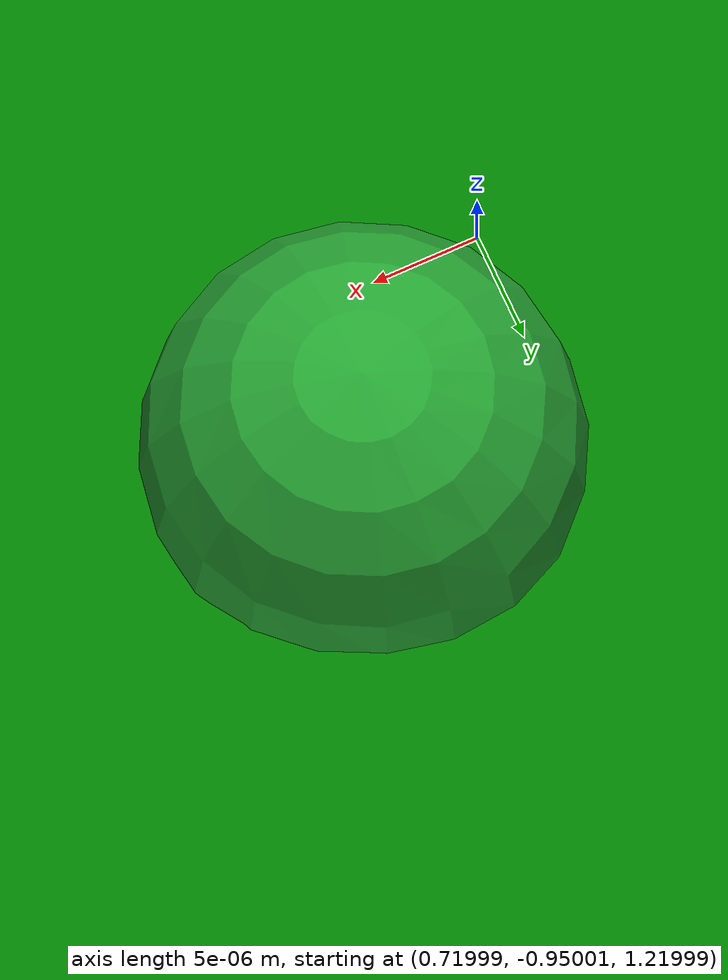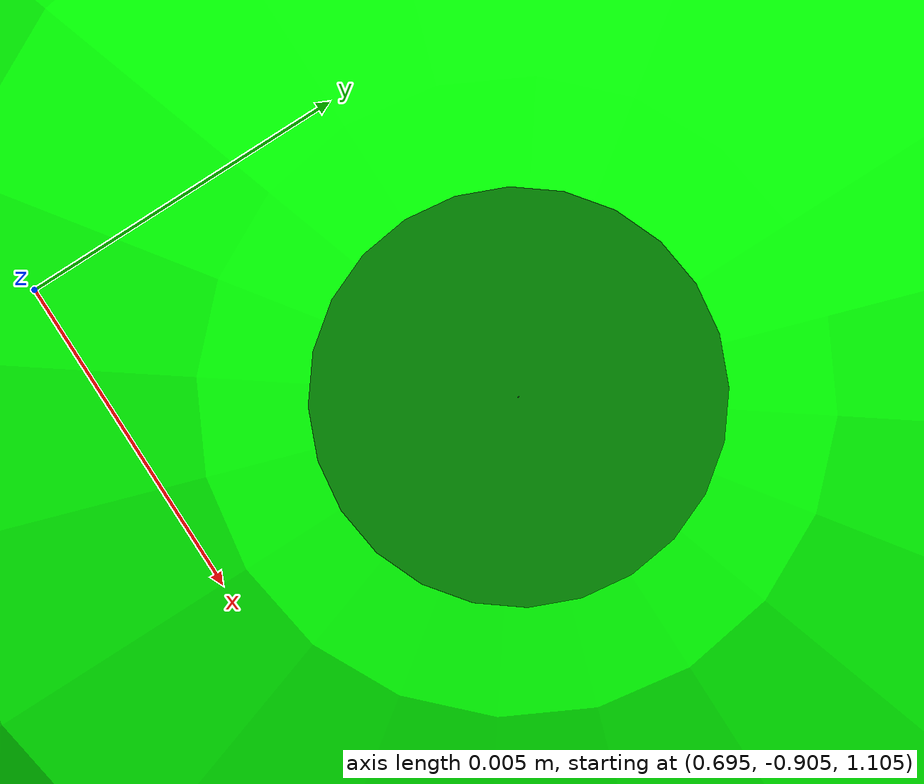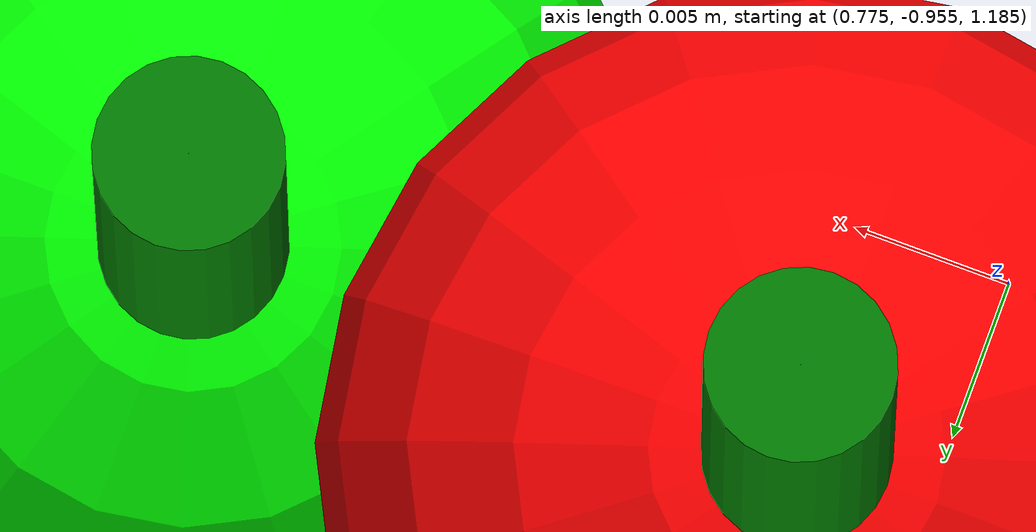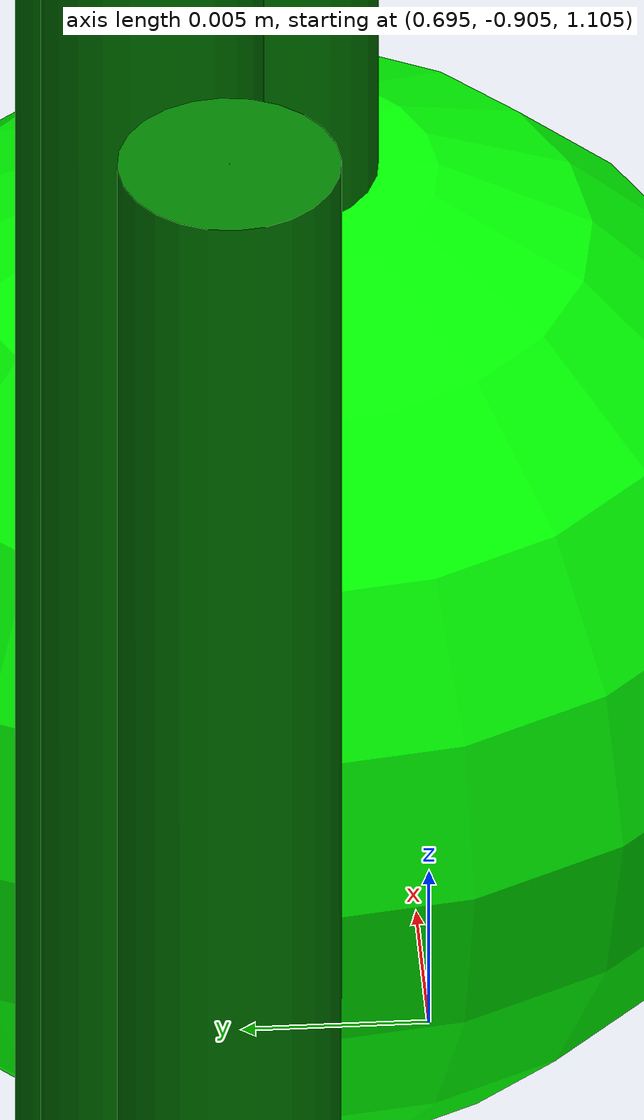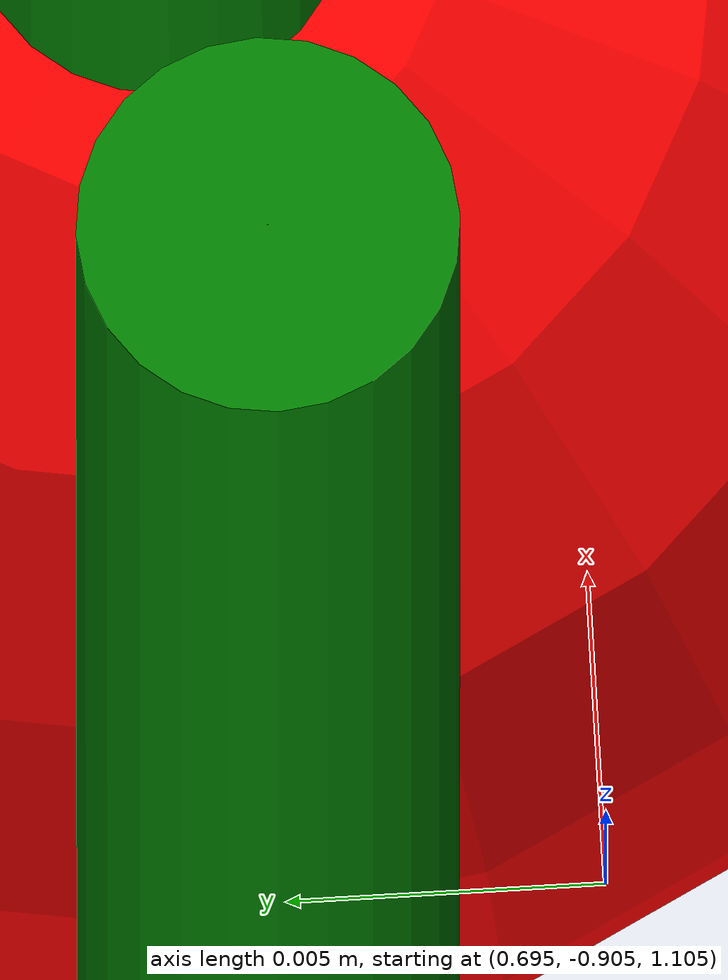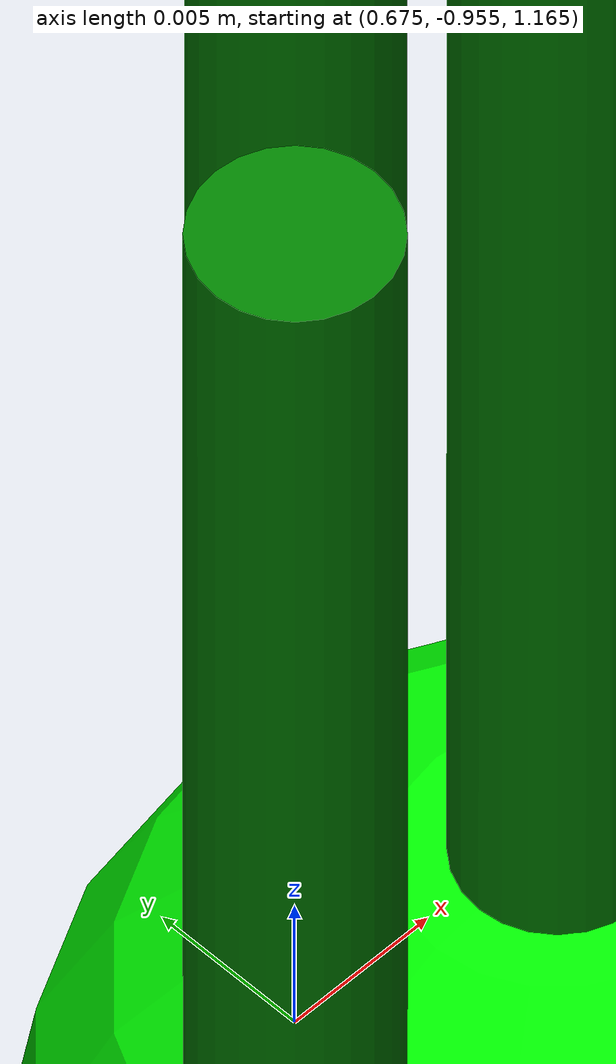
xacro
<?xml version="1.0" encoding="utf-8"?>
<robot xmlns:xacro="http://www.ros.org/wiki/xacro" name="straw_cluster2">

<xacro:arg name="tf_prefix" default=""/>

<link name="world"/>

<!-- cluster21-->
<link name="$(arg tf_prefix)/yball_stem21">
  <gravity>1</gravity>
  <inertial>
    <origin xyz="0 0 0" rpy="0 0 0"/>
    <mass value=".00001"/>
    <inertia ixx="0.00001" ixy="0.0" ixz="0.0" iyy="0.00001" iyz="0.0" izz="0.00001" />
  </inertial>
  <visual><geometry><sphere radius=".00001"/></geometry></visual>
  <collision><geometry><sphere radius=".00001"/></geometry></collision>
</link>
<gazebo reference="$(arg tf_prefix)/yball_stem21">
  <material>Gazebo/Green</material>
</gazebo>

<joint name="$(arg tf_prefix)/stem21y" type="revolute" >
  <parent link="world" />
  <child link="$(arg tf_prefix)/yball_stem21" />
  <origin xyz="0.75 -0.95 1.19" rpy="0 0 0"/>
  <axis xyz="0 1 0" />
  <dynamics damping="0.0001" friction="0.0002"/>
  <limit
      lower="-${pi}" upper="${pi}"
      effort="1" velocity="0.1" />
</joint>

<link name="$(arg tf_prefix)/xball_stem21">
  <gravity>1</gravity>
  <inertial>
    <origin xyz="0 0 0" rpy="0 0 0"/>
    <mass value=".00001"/>
    <inertia ixx="0.0000004" ixy="0.0" ixz="0.0" iyy="0.0000004" iyz="0.0" izz="0.0000004" />
  </inertial>
  <visual><geometry><sphere radius=".00001"/></geometry></visual>
  <collision><geometry><sphere radius=".00001"/></geometry></collision>
</link>
<gazebo reference="$(arg tf_prefix)/xball_stem21">
  <material>Gazebo/Green</material>
</gazebo>

<joint name="$(arg tf_prefix)/stem21x" type="revolute" >
  <parent link="$(arg tf_prefix)/yball_stem21"/>
  <child link="$(arg tf_prefix)/xball_stem21"/>
  <origin xyz="0 0 0" rpy="0 0 0"/>
  <axis xyz="1 0 0" />
  <dynamics damping="0.0001" friction="0.0002" />
  <limit
      lower="-${pi}" upper="${pi}"
      effort="1" velocity="0.1" />
</joint>

<!-- Define stem of straw21 -->
<link name="$(arg tf_prefix)/stem21">
  <gravity>1</gravity>
  <inertial>
    <origin xyz="0 0 0" rpy="0 0 0"/>
    <mass value="0.001"/>
    <inertia
      ixx="0.0000000005" ixy="0.0" ixz="0.0"
      iyy="0.0000000005" iyz="0.0"
      izz="0.0000000005"/>
  </inertial>
  <collision>
    <geometry>
	<cylinder length="0.15" radius="0.003"/>
    </geometry>
    <material name="green">
      <color rgba="0 ${128/255} 0 1"/>
    </material>
    <origin xyz="0 0 -0.075" rpy="0 0 0"/>
  </collision>
  <visual>
    <geometry>
		<cylinder length="0.15" radius="0.003"/>
    </geometry>
    <material name="green">
      <color rgba="0 ${128/255} 0 1"/>
    </material>
    <origin xyz="0 0 -0.075" rpy="0 0 0"/>
  </visual>
</link>
<gazebo reference="$(arg tf_prefix)/stem21">
  <mu1>0.01</mu1>
  <mu2>0.01</mu2>
  <selfCollide>true</selfCollide>
  <maxContacts>2</maxContacts>
  <minDepth>0</minDepth>
  <maxVel>0.01</maxVel>
  <kp  value="1" />
  <kd  value="0.1" />
  <material>Gazebo/Green</material>
</gazebo>

<joint name="$(arg tf_prefix)/xball_stem21" type="fixed">
  <parent link="$(arg tf_prefix)/xball_stem21"/>
  <child link="$(arg tf_prefix)/stem21"/>
  <origin xyz="0 0 0" rpy="0 0 0"/>
</joint>

<!-- Define straw21 -->
<link name="$(arg tf_prefix)/straw21">
  <gravity>1</gravity>
  <inertial>
    <origin xyz="0 0 0" rpy="0 0 0"/>
    <mass value="0.002"/>
    <inertia
      ixx="0.00000018" ixy="0.0" ixz="0.0"
      iyy="0.00000018" iyz="0.0"
      izz="0.00000018"/>
  </inertial>
  <collision>
    <geometry>
    <sphere radius="0.015"/>
    </geometry>
  </collision>
  <visual>
    <geometry>
	<sphere radius="0.015"/>
    </geometry>
    <material name="Red">
      <color rgba="1 0 0 1"/>
    </material>
  </visual>
</link>
<gazebo reference="$(arg tf_prefix)/straw21">
  <mu1>0.01</mu1>
  <mu2>0.01</mu2>
  <selfCollide>true</selfCollide>
  <maxContacts>2</maxContacts>
  <minDepth>0</minDepth>
  <maxVel>0.01</maxVel>
  <kp  value="1" />
  <kd  value="0.1" />
  <material>Gazebo/Red</material>
</gazebo>

<joint name="$(arg tf_prefix)/straw21_stem21" type="revolute">
  <parent link="$(arg tf_prefix)/stem21"/>
  <child link="$(arg tf_prefix)/straw21"/>
  <origin xyz="0 0 -0.15" rpy="0 0 0"/>
  <axis xyz="0 1 0" />
  <dynamics damping="0.0000001" friction="0.0000002"/>
  <limit
      lower="-${pi}" upper="${pi}"
      effort="0.01" velocity="0.1" />
</joint>

<!-- cluster22-->
<link name="$(arg tf_prefix)/yball_stem22">
  <gravity>1</gravity>
  <inertial>
    <origin xyz="0 0 0" rpy="0 0 0"/>
    <mass value=".00001"/>
    <inertia ixx="0.0000004" ixy="0.0" ixz="0.0" iyy="0.0000004" iyz="0.0" izz="0.0000004" />
  </inertial>
  <visual><geometry><sphere radius=".00001"/></geometry></visual>
  <collision><geometry><sphere radius=".00001"/></geometry></collision>
</link>
<gazebo reference="$(arg tf_prefix)/yball_stem22">
  <material>Gazebo/Green</material>
</gazebo>

<joint name="$(arg tf_prefix)/stem22y" type="revolute" >
  <parent link="world" />
  <child link="$(arg tf_prefix)/yball_stem22" />
  <origin xyz="0.72 -0.95 1.22" rpy="0 0 0"/>
  <axis xyz="0 1 0" />
  <dynamics damping="0.0001" friction="0.0002"/>
  <limit
      lower="-${pi}" upper="${pi}"
      effort="1" velocity="0.1" />
</joint>

<link name="$(arg tf_prefix)/xball_stem22">
  <gravity>1</gravity>
  <inertial>
    <origin xyz="0 0 0" rpy="0 0 0"/>
    <mass value=".00001"/>
    <inertia ixx="0.0000004" ixy="0.0" ixz="0.0" iyy="0.0000004" iyz="0.0" izz="0.0000004" />
  </inertial>
  <visual><geometry><sphere radius=".00001"/></geometry></visual>
  <collision><geometry><sphere radius=".00001"/></geometry></collision>
</link>
<gazebo reference="$(arg tf_prefix)/xball_stem22">
  <material>Gazebo/Green</material>
</gazebo>

<joint name="$(arg tf_prefix)/stem22x" type="revolute" >
  <parent link="$(arg tf_prefix)/yball_stem22"/>
  <child link="$(arg tf_prefix)/xball_stem22"/>
  <origin xyz="0 0 0" rpy="0 0 0"/>
  <axis xyz="1 0 0" />
  <dynamics damping="0.0001" friction="0.0002" />
  <limit
      lower="-${pi}" upper="${pi}"
      effort="1" velocity="0.1" />
</joint>

<!-- Define stem of straw5 -->
<link name="$(arg tf_prefix)/stem22">
  <gravity>1</gravity>
  <inertial>
    <origin xyz="0 0 0" rpy="0 0 0"/>
    <mass value="0.001"/>
    <inertia
      ixx="0.0000000005" ixy="0.0" ixz="0.0"
      iyy="0.0000000005" iyz="0.0"
      izz="0.0000000005"/>
  </inertial>
  <collision>
    <geometry>
	<cylinder length="0.15" radius="0.003"/>
    </geometry>
    <material name="green">
      <color rgba="0 ${128/255} 0 1"/>
    </material>
    <origin xyz="0 0 -0.075" rpy="0 0 0"/>
  </collision>
  <visual>
    <geometry>
		<cylinder length="0.15" radius="0.003"/>
    </geometry>
    <material name="green">
      <color rgba="0 ${128/255} 0 1"/>
    </material>
    <origin xyz="0 0 -0.075" rpy="0 0 0"/>
  </visual>
</link>
<gazebo reference="$(arg tf_prefix)/stem22">
  <mu1>0.01</mu1>
  <mu2>0.01</mu2>
  <selfCollide>true</selfCollide>
  <maxContacts>2</maxContacts>
  <minDepth>0</minDepth>
  <maxVel>0.01</maxVel>
  <kp  value="1" />
  <kd  value="0.1" />
  <material>Gazebo/Green</material>
</gazebo>

<joint name="$(arg tf_prefix)/xball_stem22" type="fixed">
  <parent link="$(arg tf_prefix)/xball_stem22"/>
  <child link="$(arg tf_prefix)/stem22"/>
  <origin xyz="0 0 0" rpy="0 0 0"/>
</joint>

<!-- Define straw5 -->
<link name="$(arg tf_prefix)/straw22">
  <gravity>1</gravity>
  <inertial>
    <origin xyz="0 0 0" rpy="0 0 0"/>
    <mass value="0.002"/>
    <inertia
      ixx="0.00000018" ixy="0.0" ixz="0.0"
      iyy="0.00000018" iyz="0.0"
      izz="0.00000018"/>
  </inertial>
  <collision>
    <geometry>
    <sphere radius="0.015"/>
    </geometry>
  </collision>
  <visual>
    <geometry>
	<sphere radius="0.015"/>
    </geometry>
    <material name="Green">
      <color rgba="0 1 0 1"/>
    </material>
  </visual>
</link>
<gazebo reference="$(arg tf_prefix)/straw22">
  <mu1>0.01</mu1>
  <mu2>0.01</mu2>
  <selfCollide>true</selfCollide>
  <maxContacts>2</maxContacts>
  <minDepth>0</minDepth>
  <maxVel>0.01</maxVel>
  <kp  value="1" />
  <kd  value="0.1" />
  <material>Gazebo/Green</material>
</gazebo>

<joint name="$(arg tf_prefix)/straw22_stem22" type="fixed">
  <parent link="$(arg tf_prefix)/stem22"/>
  <child link="$(arg tf_prefix)/straw22"/>
  <origin xyz="0 0 -0.15" rpy="0 0 0"/>
</joint>

<!-- cluster23-->
<link name="$(arg tf_prefix)/yball_stem23">
  <gravity>1</gravity>
  <inertial>
    <origin xyz="0 0 0" rpy="0 0 0"/>
    <mass value=".00001"/>
    <inertia ixx="0.0000004" ixy="0.0" ixz="0.0" iyy="0.0000004" iyz="0.0" izz="0.0000004" />
  </inertial>
  <visual><geometry><sphere radius=".00001"/></geometry></visual>
  <collision><geometry><sphere radius=".00001"/></geometry></collision>
</link>
<gazebo reference="$(arg tf_prefix)/yball_stem23">
  <material>Gazebo/Green</material>
</gazebo>

<joint name="$(arg tf_prefix)/stem23y" type="revolute" >
  <parent link="world" />
  <child link="$(arg tf_prefix)/yball_stem23" />
  <origin xyz="0.78 -0.95 1.21" rpy="0 0 0"/>
  <axis xyz="0 1 0" />
  <dynamics damping="0.0001" friction="0.0002"/>
  <limit
      lower="-${pi}" upper="${pi}"
      effort="1" velocity="0.1" />
</joint>

<link name="$(arg tf_prefix)/xball_stem23">
  <gravity>1</gravity>
  <inertial>
    <origin xyz="0 0 0" rpy="0 0 0"/>
    <mass value=".00001"/>
    <inertia ixx="0.0000004" ixy="0.0" ixz="0.0" iyy="0.0000004" iyz="0.0" izz="0.0000004" />
  </inertial>
  <visual><geometry><sphere radius=".00001"/></geometry></visual>
  <collision><geometry><sphere radius=".00001"/></geometry></collision>
</link>
<gazebo reference="$(arg tf_prefix)/xball_stem6">
  <material>Gazebo/Green</material>
</gazebo>

<joint name="$(arg tf_prefix)/stem23x" type="revolute" >
  <parent link="$(arg tf_prefix)/yball_stem23"/>
  <child link="$(arg tf_prefix)/xball_stem23"/>
  <origin xyz="0 0 0" rpy="0 0 0"/>
  <axis xyz="1 0 0" />
  <dynamics damping="0.0001" friction="0.0002" />
  <limit
      lower="-${pi}" upper="${pi}"
      effort="1" velocity="0.1" />
</joint>

<!-- Define stem of straw3 -->
<link name="$(arg tf_prefix)/stem23">
  <gravity>1</gravity>
  <inertial>
    <origin xyz="0 0 0" rpy="0 0 0"/>
    <mass value="0.0001"/>
    <inertia
      ixx="0.0000000005" ixy="0.0" ixz="0.0"
      iyy="0.0000000005" iyz="0.0"
      izz="0.0000000005"/>
  </inertial>
  <collision>
    <geometry>
	<cylinder length="0.15" radius="0.003"/>
    </geometry>
    <material name="green">
      <color rgba="0 ${128/255} 0 1"/>
    </material>
    <origin xyz="0 0 -0.075" rpy="0 0 0"/>
  </collision>
  <visual>
    <geometry>
	<cylinder length="0.15" radius="0.003"/>
    </geometry>
    <material name="green">
      <color rgba="0 ${128/255} 0 1"/>
    </material>
    <origin xyz="0 0 -0.075" rpy="0 0 0"/>
  </visual>
</link>
<gazebo reference="$(arg tf_prefix)/stem23">
  <mu1>0.01</mu1>
  <mu2>0.01</mu2>
  <selfCollide>true</selfCollide>
  <maxContacts>2</maxContacts>
  <minDepth>0</minDepth>
  <maxVel>0.01</maxVel>
  <kp  value="1" />
  <kd  value="0.1" />
  <material>Gazebo/Green</material>
</gazebo>

<joint name="$(arg tf_prefix)/xball_stem23" type="fixed">
  <parent link="$(arg tf_prefix)/xball_stem23"/>
  <child link="$(arg tf_prefix)/stem23"/>
  <origin xyz="0 0 0" rpy="0 0 0"/>
</joint>

<!-- Define straw2 -->
<link name="$(arg tf_prefix)/straw23">
  <gravity>1</gravity>
  <inertial>
    <origin xyz="0 0 0" rpy="0 0 0"/>
    <mass value="0.002"/>
    <inertia
      ixx="0.00000018" ixy="0.0" ixz="0.0"
      iyy="0.00000018" iyz="0.0"
      izz="0.00000018"/>
  </inertial>
  <collision>
    <geometry>
    <sphere radius="0.015"/>
    </geometry>
  </collision>
  <visual>
    <geometry>
	<sphere radius="0.015"/>
    </geometry>
    <material name="Red">
      <color rgba="1 0 0 1"/>
    </material>
  </visual>
</link>
<gazebo reference="$(arg tf_prefix)/straw23">
  <mu1>0.01</mu1>
  <mu2>0.01</mu2>
  <selfCollide>true</selfCollide>
  <maxContacts>2</maxContacts>
  <minDepth>0</minDepth>
  <maxVel>0.01</maxVel>
  <kp  value="1" />
  <kd  value="0.1" />
  <material>Gazebo/Red</material>
</gazebo>

<joint name="$(arg tf_prefix)/straw23_stem23" type="revolute">
  <parent link="$(arg tf_prefix)/stem23"/>
  <child link="$(arg tf_prefix)/straw23"/>
  <origin xyz="0 0 -0.15" rpy="0 0 0"/>
  <axis xyz="0 1 0" />
  <dynamics damping="0.0000001" friction="0.0000002"/>
  <limit
      lower="-${pi}" upper="${pi}"
      effort="0.01" velocity="0.1" />
</joint>

<!-- cluster24-->
<link name="$(arg tf_prefix)/yball_stem24">
  <gravity>1</gravity>
  <inertial>
    <origin xyz="0 0 0" rpy="0 0 0"/>
    <mass value=".00001"/>
    <inertia ixx="0.0000004" ixy="0.0" ixz="0.0" iyy="0.0000004" iyz="0.0" izz="0.0000004" />
  </inertial>
  <visual><geometry><sphere radius=".00001"/></geometry></visual>
  <collision><geometry><sphere radius=".00001"/></geometry></collision>
</link>
<gazebo reference="$(arg tf_prefix)/yball_stem24">
  <material>Gazebo/Green</material>
</gazebo>

<joint name="$(arg tf_prefix)/stem24y" type="revolute" >
  <parent link="world" />
  <child link="$(arg tf_prefix)/yball_stem24" />
  <origin xyz="0.8 -0.95 1.19" rpy="0 0 0"/>
  <axis xyz="0 1 0" />
  <dynamics damping="0.0001" friction="0.0002"/>
  <limit
      lower="-${pi}" upper="${pi}"
      effort="1" velocity="0.1" />
</joint>

<link name="$(arg tf_prefix)/xball_stem24">
  <gravity>1</gravity>
  <inertial>
    <origin xyz="0 0 0" rpy="0 0 0"/>
    <mass value=".00001"/>
    <inertia ixx="0.0000004" ixy="0.0" ixz="0.0" iyy="0.0000004" iyz="0.0" izz="0.0000004" />
  </inertial>
  <visual><geometry><sphere radius=".00001"/></geometry></visual>
  <collision><geometry><sphere radius=".00001"/></geometry></collision>
</link>
<gazebo reference="$(arg tf_prefix)/xball_stem24">
  <material>Gazebo/Green</material>
</gazebo>

<joint name="$(arg tf_prefix)/stem24x" type="revolute" >
  <parent link="$(arg tf_prefix)/yball_stem24"/>
  <child link="$(arg tf_prefix)/xball_stem24"/>
  <origin xyz="0 0 0" rpy="0 0 0"/>
  <axis xyz="1 0 0" />
  <dynamics damping="0.0001" friction="0.0002" />
  <limit
      lower="-${pi}" upper="${pi}"
      effort="1" velocity="0.1" />
</joint>

<!-- Define stem of straw3 -->
<link name="$(arg tf_prefix)/stem24">
  <gravity>1</gravity>
  <inertial>
    <origin xyz="0 0 0" rpy="0 0 0"/>
    <mass value="0.0001"/>
    <inertia
      ixx="0.0000000005" ixy="0.0" ixz="0.0"
      iyy="0.0000000005" iyz="0.0"
      izz="0.0000000005"/>
  </inertial>
  <collision>
    <geometry>
	<cylinder length="0.15" radius="0.003"/>
    </geometry>
    <material name="green">
      <color rgba="0 ${128/255} 0 1"/>
    </material>
    <origin xyz="0 0 -0.075" rpy="0 0 0"/>
  </collision>
  <visual>
    <geometry>
	<cylinder length="0.15" radius="0.003"/>
    </geometry>
    <material name="green">
      <color rgba="0 ${128/255} 0 1"/>
    </material>
    <origin xyz="0 0 -0.075" rpy="0 0 0"/>
  </visual>
</link>
<gazebo reference="$(arg tf_prefix)/stem24">
  <mu1>0.01</mu1>
  <mu2>0.01</mu2>
  <selfCollide>true</selfCollide>
  <maxContacts>2</maxContacts>
  <minDepth>0</minDepth>
  <maxVel>0.01</maxVel>
  <kp  value="1" />
  <kd  value="0.1" />
  <material>Gazebo/Green</material>
</gazebo>

<joint name="$(arg tf_prefix)/xball_stem24" type="fixed">
  <parent link="$(arg tf_prefix)/xball_stem24"/>
  <child link="$(arg tf_prefix)/stem24"/>
  <origin xyz="0 0 0" rpy="0 0 0"/>
</joint>

<!-- Define straw2 -->
<link name="$(arg tf_prefix)/straw24">
  <gravity>1</gravity>
  <inertial>
    <origin xyz="0 0 0" rpy="0 0 0"/>
    <mass value="0.002"/>
    <inertia
      ixx="0.00000018" ixy="0.0" ixz="0.0"
      iyy="0.00000018" iyz="0.0"
      izz="0.00000018"/>
  </inertial>
  <collision>
    <geometry>
    <sphere radius="0.015"/>
    </geometry>
  </collision>
  <visual>
    <geometry>
	<sphere radius="0.015"/>
    </geometry>
    <material name="Green">
      <color rgba="0 1 0 1"/>
    </material>
  </visual>
</link>
<gazebo reference="$(arg tf_prefix)/straw24">
  <mu1>0.01</mu1>
  <mu2>0.01</mu2>
  <selfCollide>true</selfCollide>
  <maxContacts>2</maxContacts>
  <minDepth>0</minDepth>
  <maxVel>0.01</maxVel>
  <kp  value="1" />
  <kd  value="0.1" />
  <material>Gazebo/Green</material>
</gazebo>

<joint name="$(arg tf_prefix)/straw24_stem24" type="revolute">
  <parent link="$(arg tf_prefix)/stem24"/>
  <child link="$(arg tf_prefix)/straw24"/>
  <origin xyz="0 0 -0.15" rpy="0 0 0"/>
  <axis xyz="0 1 0" />
  <dynamics damping="0.0000001" friction="0.0000002"/>
  <limit
      lower="-${pi}" upper="${pi}"
      effort="0.01" velocity="0.1" />
</joint>

<!-- cluster25-->
<link name="$(arg tf_prefix)/yball_stem25">
  <gravity>1</gravity>
  <inertial>
    <origin xyz="0 0 0" rpy="0 0 0"/>
    <mass value=".00001"/>
    <inertia ixx="0.0000004" ixy="0.0" ixz="0.0" iyy="0.0000004" iyz="0.0" izz="0.0000004" />
  </inertial>
  <visual><geometry><sphere radius=".00001"/></geometry></visual>
  <collision><geometry><sphere radius=".00001"/></geometry></collision>
</link>
<gazebo reference="$(arg tf_prefix)/yball_stem25">
  <material>Gazebo/Green</material>
</gazebo>

<joint name="$(arg tf_prefix)/stem25y" type="revolute" >
  <parent link="world" />
  <child link="$(arg tf_prefix)/yball_stem25" />
  <origin xyz="0.68 -0.95 1.19" rpy="0 0 0"/>
  <axis xyz="0 1 0" />
  <dynamics damping="0.0001" friction="0.0002"/>
  <limit
      lower="-${pi}" upper="${pi}"
      effort="1" velocity="0.1" />
</joint>

<link name="$(arg tf_prefix)/xball_stem25">
  <gravity>1</gravity>
  <inertial>
    <origin xyz="0 0 0" rpy="0 0 0"/>
    <mass value=".00001"/>
    <inertia ixx="0.0000004" ixy="0.0" ixz="0.0" iyy="0.0000004" iyz="0.0" izz="0.0000004" />
  </inertial>
  <visual><geometry><sphere radius=".00001"/></geometry></visual>
  <collision><geometry><sphere radius=".00001"/></geometry></collision>
</link>
<gazebo reference="$(arg tf_prefix)/xball_stem25">
  <material>Gazebo/Green</material>
</gazebo>

<joint name="$(arg tf_prefix)/stem6x" type="revolute" >
  <parent link="$(arg tf_prefix)/yball_stem25"/>
  <child link="$(arg tf_prefix)/xball_stem25"/>
  <origin xyz="0 0 0" rpy="0 0 0"/>
  <axis xyz="1 0 0" />
  <dynamics damping="0.0001" friction="0.0002" />
  <limit
      lower="-${pi}" upper="${pi}"
      effort="1" velocity="0.1" />
</joint>

<!-- Define stem of straw3 -->
<link name="$(arg tf_prefix)/stem25">
  <gravity>1</gravity>
  <inertial>
    <origin xyz="0 0 0" rpy="0 0 0"/>
    <mass value="0.0001"/>
    <inertia
      ixx="0.0000000005" ixy="0.0" ixz="0.0"
      iyy="0.0000000005" iyz="0.0"
      izz="0.0000000005"/>
  </inertial>
  <collision>
    <geometry>
	<cylinder length="0.15" radius="0.003"/>
    </geometry>
    <material name="green">
      <color rgba="0 ${128/255} 0 1"/>
    </material>
    <origin xyz="0 0 -0.075" rpy="0 0 0"/>
  </collision>
  <visual>
    <geometry>
	<cylinder length="0.15" radius="0.003"/>
    </geometry>
    <material name="green">
      <color rgba="0 ${128/255} 0 1"/>
    </material>
    <origin xyz="0 0 -0.075" rpy="0 0 0"/>
  </visual>
</link>
<gazebo reference="$(arg tf_prefix)/stem25">
  <mu1>0.01</mu1>
  <mu2>0.01</mu2>
  <selfCollide>true</selfCollide>
  <maxContacts>2</maxContacts>
  <minDepth>0</minDepth>
  <maxVel>0.01</maxVel>
  <kp  value="1" />
  <kd  value="0.1" />
  <material>Gazebo/Green</material>
</gazebo>

<joint name="$(arg tf_prefix)/xball_stem25" type="fixed">
  <parent link="$(arg tf_prefix)/xball_stem25"/>
  <child link="$(arg tf_prefix)/stem25"/>
  <origin xyz="0 0 0" rpy="0 0 0"/>
</joint>

<!-- Define straw2 -->
<link name="$(arg tf_prefix)/straw25">
  <gravity>1</gravity>
  <inertial>
    <origin xyz="0 0 0" rpy="0 0 0"/>
    <mass value="0.002"/>
    <inertia
      ixx="0.00000018" ixy="0.0" ixz="0.0"
      iyy="0.00000018" iyz="0.0"
      izz="0.00000018"/>
  </inertial>
  <collision>
    <geometry>
    <sphere radius="0.015"/>
    </geometry>
  </collision>
  <visual>
    <geometry>
	<sphere radius="0.015"/>
    </geometry>
    <material name="Green">
      <color rgba="0 1 0 1"/>
    </material>
  </visual>
</link>
<gazebo reference="$(arg tf_prefix)/straw25">
  <mu1>0.01</mu1>
  <mu2>0.01</mu2>
  <selfCollide>true</selfCollide>
  <maxContacts>2</maxContacts>
  <minDepth>0</minDepth>
  <maxVel>0.01</maxVel>
  <kp  value="1" />
  <kd  value="0.1" />
  <material>Gazebo/Green</material>
</gazebo>

<joint name="$(arg tf_prefix)/straw25_stem25" type="revolute">
  <parent link="$(arg tf_prefix)/stem25"/>
  <child link="$(arg tf_prefix)/straw25"/>
  <origin xyz="0 0 -0.15" rpy="0 0 0"/>
  <axis xyz="0 1 0" />
  <dynamics damping="0.0000001" friction="0.0000002"/>
  <limit
      lower="-${pi}" upper="${pi}"
      effort="0.01" velocity="0.1" />
</joint>

<!-- cluster26-->
<link name="$(arg tf_prefix)/yball_stem26">
  <gravity>1</gravity>
  <inertial>
    <origin xyz="0 0 0" rpy="0 0 0"/>
    <mass value=".00001"/>
    <inertia ixx="0.0000004" ixy="0.0" ixz="0.0" iyy="0.0000004" iyz="0.0" izz="0.0000004" />
  </inertial>
  <visual><geometry><sphere radius=".00001"/></geometry></visual>
  <collision><geometry><sphere radius=".00001"/></geometry></collision>
</link>
<gazebo reference="$(arg tf_prefix)/yball_stem26">
  <material>Gazebo/Green</material>
</gazebo>

<joint name="$(arg tf_prefix)/stem26y" type="revolute" >
  <parent link="world" />
  <child link="$(arg tf_prefix)/yball_stem26" />
  <origin xyz="0.73 -0.9 1.16" rpy="0 0 0"/>
  <axis xyz="0 1 0" />
  <dynamics damping="0.0001" friction="0.0002"/>
  <limit
      lower="-${pi}" upper="${pi}"
      effort="1" velocity="0.1" />
</joint>

<link name="$(arg tf_prefix)/xball_stem26">
  <gravity>1</gravity>
  <inertial>
    <origin xyz="0 0 0" rpy="0 0 0"/>
    <mass value=".00001"/>
    <inertia ixx="0.0000004" ixy="0.0" ixz="0.0" iyy="0.0000004" iyz="0.0" izz="0.0000004" />
  </inertial>
  <visual><geometry><sphere radius=".00001"/></geometry></visual>
  <collision><geometry><sphere radius=".00001"/></geometry></collision>
</link>
<gazebo reference="$(arg tf_prefix)/xball_stem26">
  <material>Gazebo/Green</material>
</gazebo>

<joint name="$(arg tf_prefix)/stem26x" type="revolute" >
  <parent link="$(arg tf_prefix)/yball_stem26"/>
  <child link="$(arg tf_prefix)/xball_stem26"/>
  <origin xyz="0 0 0" rpy="0 0 0"/>
  <axis xyz="1 0 0" />
  <dynamics damping="0.0001" friction="0.0002" />
  <limit
      lower="-${pi}" upper="${pi}"
      effort="1" velocity="0.1" />
</joint>

<!-- Define stem of straw3 -->
<link name="$(arg tf_prefix)/stem26">
  <gravity>1</gravity>
  <inertial>
    <origin xyz="0 0 0" rpy="0 0 0"/>
    <mass value="0.0001"/>
    <inertia
      ixx="0.0000000005" ixy="0.0" ixz="0.0"
      iyy="0.0000000005" iyz="0.0"
      izz="0.0000000005"/>
  </inertial>
  <collision>
    <geometry>
	<cylinder length="0.15" radius="0.003"/>
    </geometry>
    <material name="green">
      <color rgba="0 ${128/255} 0 1"/>
    </material>
    <origin xyz="0 0 -0.075" rpy="0 0 0"/>
  </collision>
  <visual>
    <geometry>
	<cylinder length="0.15" radius="0.003"/>
    </geometry>
    <material name="green">
      <color rgba="0 ${128/255} 0 1"/>
    </material>
    <origin xyz="0 0 -0.075" rpy="0 0 0"/>
  </visual>
</link>
<gazebo reference="$(arg tf_prefix)/stem26">
  <mu1>0.01</mu1>
  <mu2>0.01</mu2>
  <selfCollide>true</selfCollide>
  <maxContacts>2</maxContacts>
  <minDepth>0</minDepth>
  <maxVel>0.01</maxVel>
  <kp  value="1" />
  <kd  value="0.1" />
  <material>Gazebo/Green</material>
</gazebo>

<joint name="$(arg tf_prefix)/xball_stem26" type="fixed">
  <parent link="$(arg tf_prefix)/xball_stem26"/>
  <child link="$(arg tf_prefix)/stem26"/>
  <origin xyz="0 0 0" rpy="0 0 0"/>
</joint>

<!-- Define straw2 -->
<link name="$(arg tf_prefix)/straw26">
  <gravity>1</gravity>
  <inertial>
    <origin xyz="0 0 0" rpy="0 0 0"/>
    <mass value="0.002"/>
    <inertia
      ixx="0.00000018" ixy="0.0" ixz="0.0"
      iyy="0.00000018" iyz="0.0"
      izz="0.00000018"/>
  </inertial>
  <collision>
    <geometry>
    <sphere radius="0.015"/>
    </geometry>
  </collision>
  <visual>
    <geometry>
	<sphere radius="0.015"/>
    </geometry>
    <material name="Red">
      <color rgba="1 0 0 1"/>
    </material>
  </visual>
</link>
<gazebo reference="$(arg tf_prefix)/straw26">
  <mu1>0.01</mu1>
  <mu2>0.01</mu2>
  <selfCollide>true</selfCollide>
  <maxContacts>2</maxContacts>
  <minDepth>0</minDepth>
  <maxVel>0.01</maxVel>
  <kp  value="1" />
  <kd  value="0.1" />
  <material>Gazebo/Red</material>
</gazebo>

<joint name="$(arg tf_prefix)/straw26_stem26" type="revolute">
  <parent link="$(arg tf_prefix)/stem26"/>
  <child link="$(arg tf_prefix)/straw26"/>
  <origin xyz="0 0 -0.15" rpy="0 0 0"/>
  <axis xyz="0 1 0" />
  <dynamics damping="0.0000001" friction="0.0000002"/>
  <limit
      lower="-${pi}" upper="${pi}"
      effort="0.01" velocity="0.1" />
</joint>

<!-- cluster27-->
<link name="$(arg tf_prefix)/yball_stem27">
  <gravity>1</gravity>
  <inertial>
    <origin xyz="0 0 0" rpy="0 0 0"/>
    <mass value=".00001"/>
    <inertia ixx="0.0000004" ixy="0.0" ixz="0.0" iyy="0.0000004" iyz="0.0" izz="0.0000004" />
  </inertial>
  <visual><geometry><sphere radius=".00001"/></geometry></visual>
  <collision><geometry><sphere radius=".00001"/></geometry></collision>
</link>
<gazebo reference="$(arg tf_prefix)/yball_stem27">
  <material>Gazebo/Green</material>
</gazebo>

<joint name="$(arg tf_prefix)/stem27y" type="revolute" >
  <parent link="world" />
  <child link="$(arg tf_prefix)/yball_stem27" />
  <origin xyz="0.7 -0.9 1.13" rpy="0 0 0"/>
  <axis xyz="0 1 0" />
  <dynamics damping="0.0001" friction="0.0002"/>
  <limit
      lower="-${pi}" upper="${pi}"
      effort="1" velocity="0.1" />
</joint>

<link name="$(arg tf_prefix)/xball_stem27">
  <gravity>1</gravity>
  <inertial>
    <origin xyz="0 0 0" rpy="0 0 0"/>
    <mass value=".00001"/>
    <inertia ixx="0.0000004" ixy="0.0" ixz="0.0" iyy="0.0000004" iyz="0.0" izz="0.0000004" />
  </inertial>
  <visual><geometry><sphere radius=".00001"/></geometry></visual>
  <collision><geometry><sphere radius=".00001"/></geometry></collision>
</link>
<gazebo reference="$(arg tf_prefix)/xball_stem27">
  <material>Gazebo/Green</material>
</gazebo>

<joint name="$(arg tf_prefix)/stem27x" type="revolute" >
  <parent link="$(arg tf_prefix)/yball_stem27"/>
  <child link="$(arg tf_prefix)/xball_stem27"/>
  <origin xyz="0 0 0" rpy="0 0 0"/>
  <axis xyz="1 0 0" />
  <dynamics damping="0.0001" friction="0.0002" />
  <limit
      lower="-${pi}" upper="${pi}"
      effort="1" velocity="0.1" />
</joint>

<!-- Define stem of straw3 -->
<link name="$(arg tf_prefix)/stem27">
  <gravity>1</gravity>
  <inertial>
    <origin xyz="0 0 0" rpy="0 0 0"/>
    <mass value="0.0001"/>
    <inertia
      ixx="0.0000000005" ixy="0.0" ixz="0.0"
      iyy="0.0000000005" iyz="0.0"
      izz="0.0000000005"/>
  </inertial>
  <collision>
    <geometry>
		<cylinder length="0.15" radius="0.003"/>
    </geometry>
    <material name="green">
      <color rgba="0 ${128/255} 0 1"/>
    </material>
    <origin xyz="0 0 -0.075" rpy="0 0 0"/>
  </collision>
  <visual>
    <geometry>
		<cylinder length="0.15" radius="0.003"/>
    </geometry>
    <material name="green">
      <color rgba="0 ${128/255} 0 1"/>
    </material>
    <origin xyz="0 0 -0.075" rpy="0 0 0"/>
  </visual>
</link>
<gazebo reference="$(arg tf_prefix)/stem27">
  <mu1>0.01</mu1>
  <mu2>0.01</mu2>
  <selfCollide>true</selfCollide>
  <maxContacts>2</maxContacts>
  <minDepth>0</minDepth>
  <maxVel>0.01</maxVel>
  <kp  value="1" />
  <kd  value="0.1" />
  <material>Gazebo/Green</material>
</gazebo>

<joint name="$(arg tf_prefix)/xball_stem27" type="fixed">
  <parent link="$(arg tf_prefix)/xball_stem27"/>
  <child link="$(arg tf_prefix)/stem27"/>
  <origin xyz="0 0 0" rpy="0 0 0"/>
</joint>

<!-- Define straw2 -->
<link name="$(arg tf_prefix)/straw27">
  <gravity>1</gravity>
  <inertial>
    <origin xyz="0 0 0" rpy="0 0 0"/>
    <mass value="0.002"/>
    <inertia
      ixx="0.00000018" ixy="0.0" ixz="0.0"
      iyy="0.00000018" iyz="0.0"
      izz="0.00000018"/>
  </inertial>
  <collision>
    <geometry>
    <sphere radius="0.015"/>
    </geometry>
  </collision>
  <visual>
    <geometry>
		<sphere radius="0.015"/>
    </geometry>
    <material name="Green">
      <color rgba="0 1 0 1"/>
    </material>
  </visual>
</link>
<gazebo reference="$(arg tf_prefix)/straw27">
  <mu1>0.01</mu1>
  <mu2>0.01</mu2>
  <selfCollide>true</selfCollide>
  <maxContacts>2</maxContacts>
  <minDepth>0</minDepth>
  <maxVel>0.01</maxVel>
  <kp  value="1" />
  <kd  value="0.1" />
  <material>Gazebo/Green</material>
</gazebo>

<joint name="$(arg tf_prefix)/straw27_stem27" type="revolute">
  <parent link="$(arg tf_prefix)/stem27"/>
  <child link="$(arg tf_prefix)/straw27"/>
  <origin xyz="0 0 -0.15" rpy="0 0 0"/>
  <axis xyz="0 1 0" />
  <dynamics damping="0.0000001" friction="0.0000002"/>
  <limit
      lower="-${pi}" upper="${pi}"
      effort="0.01" velocity="0.1" />
</joint>

<!-- cluster28-->
<link name="$(arg tf_prefix)/yball_stem28">
  <gravity>1</gravity>
  <inertial>
    <origin xyz="0 0 0" rpy="0 0 0"/>
    <mass value=".00001"/>
    <inertia ixx="0.0000004" ixy="0.0" ixz="0.0" iyy="0.0000004" iyz="0.0" izz="0.0000004" />
  </inertial>
  <visual><geometry><sphere radius=".00001"/></geometry></visual>
  <collision><geometry><sphere radius=".00001"/></geometry></collision>
</link>
<gazebo reference="$(arg tf_prefix)/yball_stem28">
  <material>Gazebo/Green</material>
</gazebo>

<joint name="$(arg tf_prefix)/stem28y" type="revolute" >
  <parent link="world" />
  <child link="$(arg tf_prefix)/yball_stem28" />
  <origin xyz="0.74 -0.9 1.2" rpy="0 0 0"/>
  <axis xyz="0 1 0" />
  <dynamics damping="0.0001" friction="0.0002"/>
  <limit
      lower="-${pi}" upper="${pi}"
      effort="1" velocity="0.1" />
</joint>

<link name="$(arg tf_prefix)/xball_stem28">
  <gravity>1</gravity>
  <inertial>
    <origin xyz="0 0 0" rpy="0 0 0"/>
    <mass value=".00001"/>
    <inertia ixx="0.0000004" ixy="0.0" ixz="0.0" iyy="0.0000004" iyz="0.0" izz="0.0000004" />
  </inertial>
  <visual><geometry><sphere radius=".00001"/></geometry></visual>
  <collision><geometry><sphere radius=".00001"/></geometry></collision>
</link>
<gazebo reference="$(arg tf_prefix)/xball_stem28">
  <material>Gazebo/Green</material>
</gazebo>

<joint name="$(arg tf_prefix)/stem28x" type="revolute" >
  <parent link="$(arg tf_prefix)/yball_stem28"/>
  <child link="$(arg tf_prefix)/xball_stem28"/>
  <origin xyz="0 0 0" rpy="0 0 0"/>
  <axis xyz="1 0 0" />
  <dynamics damping="0.0001" friction="0.0002" />
  <limit
      lower="-${pi}" upper="${pi}"
      effort="1" velocity="0.1" />
</joint>

<!-- Define stem of straw3 -->
<link name="$(arg tf_prefix)/stem28">
  <gravity>1</gravity>
  <inertial>
    <origin xyz="0 0 0" rpy="0 0 0"/>
    <mass value="0.0001"/>
    <inertia
      ixx="0.0000000005" ixy="0.0" ixz="0.0"
      iyy="0.0000000005" iyz="0.0"
      izz="0.0000000005"/>
  </inertial>
  <collision>
    <geometry>
		<cylinder length="0.15" radius="0.003"/>
    </geometry>
    <material name="green">
      <color rgba="0 ${128/255} 0 1"/>
    </material>
    <origin xyz="0 0 -0.075" rpy="0 0 0"/>
  </collision>
  <visual>
    <geometry>
		<cylinder length="0.15" radius="0.003"/>
    </geometry>
    <material name="green">
      <color rgba="0 ${128/255} 0 1"/>
    </material>
    <origin xyz="0 0 -0.075" rpy="0 0 0"/>
  </visual>
</link>
<gazebo reference="$(arg tf_prefix)/stem28">
  <mu1>0.01</mu1>
  <mu2>0.01</mu2>
  <selfCollide>true</selfCollide>
  <maxContacts>2</maxContacts>
  <minDepth>0</minDepth>
  <maxVel>0.01</maxVel>
  <kp  value="1" />
  <kd  value="0.1" />
  <material>Gazebo/Green</material>
</gazebo>

<joint name="$(arg tf_prefix)/xball_stem28" type="fixed">
  <parent link="$(arg tf_prefix)/xball_stem28"/>
  <child link="$(arg tf_prefix)/stem28"/>
  <origin xyz="0 0 0" rpy="0 0 0"/>
</joint>

<!-- Define straw2 -->
<link name="$(arg tf_prefix)/straw28">
  <gravity>1</gravity>
  <inertial>
    <origin xyz="0 0 0" rpy="0 0 0"/>
    <mass value="0.002"/>
    <inertia
      ixx="0.00000018" ixy="0.0" ixz="0.0"
      iyy="0.00000018" iyz="0.0"
      izz="0.00000018"/>
  </inertial>
  <collision>
    <geometry>
    <sphere radius="0.015"/>
    </geometry>
  </collision>
  <visual>
    <geometry>
	<sphere radius="0.015"/>
    </geometry>
    <material name="Green">
      <color rgba="0 1 0 1"/>
    </material>
  </visual>
</link>
<gazebo reference="$(arg tf_prefix)/straw28">
  <mu1>0.01</mu1>
  <mu2>0.01</mu2>
  <selfCollide>true</selfCollide>
  <maxContacts>2</maxContacts>
  <minDepth>0</minDepth>
  <maxVel>0.01</maxVel>
  <kp  value="1" />
  <kd  value="0.1" />
  <material>Gazebo/Green</material>
</gazebo>

<joint name="$(arg tf_prefix)/straw28_stem28" type="revolute">
  <parent link="$(arg tf_prefix)/stem28"/>
  <child link="$(arg tf_prefix)/straw28"/>
  <origin xyz="0 0 -0.15" rpy="0 0 0"/>
  <axis xyz="0 1 0" />
  <dynamics damping="0.0000001" friction="0.0000002"/>
  <limit
      lower="-${pi}" upper="${pi}"
      effort="0.01" velocity="0.1" />
</joint>

<!-- cluster29-->
<link name="$(arg tf_prefix)/yball_stem29">
  <gravity>1</gravity>
  <inertial>
    <origin xyz="0 0 0" rpy="0 0 0"/>
    <mass value=".00001"/>
    <inertia ixx="0.0000004" ixy="0.0" ixz="0.0" iyy="0.0000004" iyz="0.0" izz="0.0000004" />
  </inertial>
  <visual><geometry><sphere radius=".00001"/></geometry></visual>
  <collision><geometry><sphere radius=".00001"/></geometry></collision>
</link>
<gazebo reference="$(arg tf_prefix)/yball_stem29">
  <material>Gazebo/Green</material>
</gazebo>

<joint name="$(arg tf_prefix)/stem29y" type="revolute" >
  <parent link="world" />
  <child link="$(arg tf_prefix)/yball_stem29" />
  <origin xyz="0.83 -0.91 1.17" rpy="0 0 0"/>
  <axis xyz="0 1 0" />
  <dynamics damping="0.0001" friction="0.0002"/>
  <limit
      lower="-${pi}" upper="${pi}"
      effort="1" velocity="0.1" />
</joint>

<link name="$(arg tf_prefix)/xball_stem29">
  <gravity>1</gravity>
  <inertial>
    <origin xyz="0 0 0" rpy="0 0 0"/>
    <mass value=".00001"/>
    <inertia ixx="0.0000004" ixy="0.0" ixz="0.0" iyy="0.0000004" iyz="0.0" izz="0.0000004" />
  </inertial>
  <visual><geometry><sphere radius=".00001"/></geometry></visual>
  <collision><geometry><sphere radius=".00001"/></geometry></collision>
</link>
<gazebo reference="$(arg tf_prefix)/xball_stem29">
  <material>Gazebo/Green</material>
</gazebo>

<joint name="$(arg tf_prefix)/stem29x" type="revolute" >
  <parent link="$(arg tf_prefix)/yball_stem29"/>
  <child link="$(arg tf_prefix)/xball_stem29"/>
  <origin xyz="0 0 0" rpy="0 0 0"/>
  <axis xyz="1 0 0" />
  <dynamics damping="0.0001" friction="0.0002" />
  <limit
      lower="-${pi}" upper="${pi}"
      effort="1" velocity="0.1" />
</joint>

<!-- Define stem of straw3 -->
<link name="$(arg tf_prefix)/stem29">
  <gravity>1</gravity>
  <inertial>
    <origin xyz="0 0 0" rpy="0 0 0"/>
    <mass value="0.0001"/>
    <inertia
      ixx="0.0000000005" ixy="0.0" ixz="0.0"
      iyy="0.0000000005" iyz="0.0"
      izz="0.0000000005"/>
  </inertial>
  <collision>
    <geometry>
	<cylinder length="0.15" radius="0.003"/>
    </geometry>
    <material name="green">
      <color rgba="0 ${128/255} 0 1"/>
    </material>
    <origin xyz="0 0 -0.075" rpy="0 0 0"/>
  </collision>
  <visual>
    <geometry>
	<cylinder length="0.15" radius="0.003"/>
    </geometry>
    <material name="green">
      <color rgba="0 ${128/255} 0 1"/>
    </material>
    <origin xyz="0 0 -0.075" rpy="0 0 0"/>
  </visual>
</link>
<gazebo reference="$(arg tf_prefix)/stem29">
  <mu1>0.01</mu1>
  <mu2>0.01</mu2>
  <selfCollide>true</selfCollide>
  <maxContacts>2</maxContacts>
  <minDepth>0</minDepth>
  <maxVel>0.01</maxVel>
  <kp  value="1" />
  <kd  value="0.1" />
  <material>Gazebo/Green</material>
</gazebo>

<joint name="$(arg tf_prefix)/xball_stem29" type="fixed">
  <parent link="$(arg tf_prefix)/xball_stem29"/>
  <child link="$(arg tf_prefix)/stem29"/>
  <origin xyz="0 0 0" rpy="0 0 0"/>
</joint>

<!-- Define straw2 -->
<link name="$(arg tf_prefix)/straw29">
  <gravity>1</gravity>
  <inertial>
    <origin xyz="0 0 0" rpy="0 0 0"/>
    <mass value="0.002"/>
    <inertia
      ixx="0.00000018" ixy="0.0" ixz="0.0"
      iyy="0.00000018" iyz="0.0"
      izz="0.00000018"/>
  </inertial>
  <collision>
    <geometry>
    <sphere radius="0.015"/>
    </geometry>
  </collision>
  <visual>
    <geometry>
	<sphere radius="0.015"/>
    </geometry>
    <material name="Green">
      <color rgba="0 1 0 1"/>
    </material>
  </visual>
</link>
<gazebo reference="$(arg tf_prefix)/straw29">
  <mu1>0.01</mu1>
  <mu2>0.01</mu2>
  <selfCollide>true</selfCollide>
  <maxContacts>2</maxContacts>
  <minDepth>0</minDepth>
  <maxVel>0.01</maxVel>
  <kp  value="1" />
  <kd  value="0.1" />
  <material>Gazebo/Green</material>
</gazebo>

<joint name="$(arg tf_prefix)/straw29_stem29" type="revolute">
  <parent link="$(arg tf_prefix)/stem29"/>
  <child link="$(arg tf_prefix)/straw29"/>
  <origin xyz="0 0 -0.15" rpy="0 0 0"/>
  <axis xyz="0 1 0" />
  <dynamics damping="0.0000001" friction="0.0000002"/>
  <limit
      lower="-${pi}" upper="${pi}"
      effort="0.01" velocity="0.1" />
</joint>

<!-- cluster210-->
<link name="$(arg tf_prefix)/yball_stem210">
  <gravity>1</gravity>
  <inertial>
    <origin xyz="0 0 0" rpy="0 0 0"/>
    <mass value=".00001"/>
    <inertia ixx="0.0000004" ixy="0.0" ixz="0.0" iyy="0.0000004" iyz="0.0" izz="0.0000004" />
  </inertial>
  <visual><geometry><sphere radius=".00001"/></geometry></visual>
  <collision><geometry><sphere radius=".00001"/></geometry></collision>
</link>
<gazebo reference="$(arg tf_prefix)/yball_stem210">
  <material>Gazebo/Green</material>
</gazebo>

<joint name="$(arg tf_prefix)/stem210y" type="revolute" >
  <parent link="world" />
  <child link="$(arg tf_prefix)/yball_stem210" />
  <origin xyz="10.05 -2.53 1.16" rpy="0 0 0"/>
  <axis xyz="0 1 0" />
  <dynamics damping="0.0001" friction="0.0002"/>
  <limit
      lower="-${pi}" upper="${pi}"
      effort="1" velocity="0.1" />
</joint>

<link name="$(arg tf_prefix)/xball_stem210">
  <gravity>1</gravity>
  <inertial>
    <origin xyz="0 0 0" rpy="0 0 0"/>
    <mass value=".00001"/>
    <inertia ixx="0.0000004" ixy="0.0" ixz="0.0" iyy="0.0000004" iyz="0.0" izz="0.0000004" />
  </inertial>
  <visual><geometry><sphere radius=".00001"/></geometry></visual>
  <collision><geometry><sphere radius=".00001"/></geometry></collision>
</link>
<gazebo reference="$(arg tf_prefix)/xball_stem210">
  <material>Gazebo/Green</material>
</gazebo>

<joint name="$(arg tf_prefix)/stem210x" type="revolute" >
  <parent link="$(arg tf_prefix)/yball_stem210"/>
  <child link="$(arg tf_prefix)/xball_stem210"/>
  <origin xyz="0 0 0" rpy="0 0 0"/>
  <axis xyz="1 0 0" />
  <dynamics damping="0.0001" friction="0.0002" />
  <limit
      lower="-${pi}" upper="${pi}"
      effort="1" velocity="0.1" />
</joint>

<!-- Define stem of straw3 -->
<link name="$(arg tf_prefix)/stem210">
  <gravity>1</gravity>
  <inertial>
    <origin xyz="0 0 0" rpy="0 0 0"/>
    <mass value="0.0001"/>
    <inertia
      ixx="0.0000000005" ixy="0.0" ixz="0.0"
      iyy="0.0000000005" iyz="0.0"
      izz="0.0000000005"/>
  </inertial>
  <collision>
    <geometry>
	<cylinder length="0.15" radius="0.003"/>
    </geometry>
    <material name="green">
      <color rgba="0 ${128/255} 0 1"/>
    </material>
    <origin xyz="0 0 -0.075" rpy="0 0 0"/>
  </collision>
  <visual>
    <geometry>
	<cylinder length="0.15" radius="0.003"/>
    </geometry>
    <material name="green">
      <color rgba="0 ${128/255} 0 1"/>
    </material>
    <origin xyz="0 0 -0.075" rpy="0 0 0"/>
  </visual>
</link>
<gazebo reference="$(arg tf_prefix)/stem210">
  <mu1>0.01</mu1>
  <mu2>0.01</mu2>
  <selfCollide>true</selfCollide>
  <maxContacts>2</maxContacts>
  <minDepth>0</minDepth>
  <maxVel>0.01</maxVel>
  <kp  value="1" />
  <kd  value="0.1" />
  <material>Gazebo/Green</material>
</gazebo>

<joint name="$(arg tf_prefix)/xball_stem210" type="fixed">
  <parent link="$(arg tf_prefix)/xball_stem210"/>
  <child link="$(arg tf_prefix)/stem210"/>
  <origin xyz="0 0 0" rpy="0 0 0"/>
</joint>

<!-- Define straw2 -->
<link name="$(arg tf_prefix)/straw210">
  <gravity>1</gravity>
  <inertial>
    <origin xyz="0 0 0" rpy="0 0 0"/>
    <mass value="0.002"/>
    <inertia
      ixx="0.00000018" ixy="0.0" ixz="0.0"
      iyy="0.00000018" iyz="0.0"
      izz="0.00000018"/>
  </inertial>
  <collision>
    <geometry>
    <sphere radius="0.015"/>
    </geometry>
  </collision>
  <visual>
    <geometry>
	<sphere radius="0.015"/>
    </geometry>
    <material name="Red">
      <color rgba="1 0 1 0"/>
    </material>
  </visual>
</link>
<gazebo reference="$(arg tf_prefix)/straw210">
  <mu1>0.01</mu1>
  <mu2>0.01</mu2>
  <selfCollide>true</selfCollide>
  <maxContacts>2</maxContacts>
  <minDepth>0</minDepth>
  <maxVel>0.01</maxVel>
  <kp  value="1" />
  <kd  value="0.1" />
  <material>Gazebo/Red</material>
</gazebo>

<joint name="$(arg tf_prefix)/straw210_stem210" type="revolute">
  <parent link="$(arg tf_prefix)/stem210"/>
  <child link="$(arg tf_prefix)/straw210"/>
  <origin xyz="0 0 -0.15" rpy="0 0 0"/>
  <axis xyz="0 1 0" />
  <dynamics damping="0.0000001" friction="0.0000002"/>
  <limit
      lower="-${pi}" upper="${pi}"
      effort="0.01" velocity="0.1" />
</joint>

</robot>
